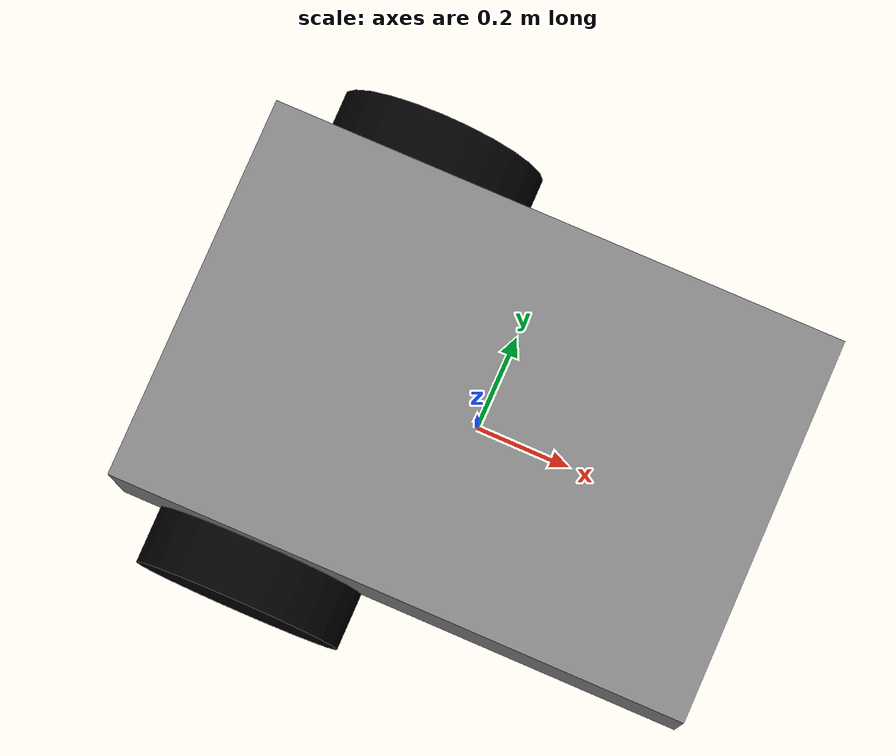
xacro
<?xml version="1.0"?>
<robot name="tortoisebot" xmlns:xacro="http://www.ros.org/wiki/xacro" >

  <xacro:include filename="$(find tortoisebot_description)/urdf/gazebo_plug_bot.urdf.xacro"/>
  <xacro:load_gazebo_plugin/>

<!-- Base Link -->
  <link name="base_link"/>
  <material name="Gray">
    <color rgba="0.5 0.5 0.5 1.0"/>
  </material>
  <material name="Black">
    <color rgba="0.0 0.0 0.0 1.0"/>
  </material>
  <material name="Red">
    <color rgba="1.0 0.0 0.0 1.0"/>
  </material>
  <material name="Blue">
    <color rgba="0.0 0.0 1.0 1.0"/>
  </material>
  <material name="Green">
    <color rgba="0.0 1.0 0.0 1.0"/>
  </material>
  <material name="White">
    <color rgba="1.0 1.0 1.0 1.0"/>
  </material>
  <!-- Chassis Link -->
  <link name="chassis">
    <inertial>
      <mass value="1.0"/>
      <origin rpy="0 0 0" xyz="0 0 0"/>
      <inertia ixx="0.06083333333333334" ixy="0" ixz="0" iyy="0.1275" iyz="0" izz="0.17333333333333334"/>
    </inertial>
    <visual>
      <origin rpy="0 0 0" xyz="0 0 0"/>
      <geometry>
        <box size="1.2 0.8 0.3"/>
      </geometry>
      <material name="Gray"/>
    </visual>
    <collision>
      <origin rpy="0 0 0" xyz="0 0 0"/>
      <geometry>
        <box size="1.2 0.8 0.3"/>
      </geometry>
    </collision>
  </link>
  <!-- Fixed Joint between base_link and chassis -->
  <joint name="base_to_chassis" type="fixed">
    <parent link="base_link"/>
    <child link="chassis"/>
    <origin rpy="0 0 0" xyz="0 0 0.15"/>
  </joint>
  <link name="left_wheel">
    <inertial>
      <mass value="0.5"/>
      <origin rpy="1.5707963267948966 0 0" xyz="0 0 0"/>
      <inertia ixx="0.00665" ixy="0" ixz="0" iyy="0.00665" iyz="0" izz="0.0121"/>
    </inertial>
    <visual>
      <origin rpy="1.5707963267948966 0 0" xyz="0 0 0"/>
      <geometry>
        <cylinder length="0.12" radius="0.22"/>
      </geometry>
      <material name="Black"/>
    </visual>
    <collision>
      <origin rpy="1.5707963267948966 0 0" xyz="0 0 0"/>
      <geometry>
        <cylinder length="0.12" radius="0.22"/>
      </geometry>
    </collision>
  </link>
  <joint name="left_joint" type="continuous">
    <parent link="chassis"/>
    <child link="left_wheel"/>
    <origin rpy="0 0 0" xyz="-0.3 0.46 -0.15"/>
    <axis xyz="0 1 0"/>
  </joint>
  <link name="right_wheel">
    <inertial>
      <mass value="0.5"/>
      <origin rpy="1.5707963267948966 0 0" xyz="0 0 0"/>
      <inertia ixx="0.00665" ixy="0" ixz="0" iyy="0.00665" iyz="0" izz="0.0121"/>
    </inertial>
    <visual>
      <origin rpy="1.5707963267948966 0 0" xyz="0 0 0"/>
      <geometry>
        <cylinder length="0.12" radius="0.22"/>
      </geometry>
      <material name="Black"/>
    </visual>
    <collision>
      <origin rpy="1.5707963267948966 0 0" xyz="0 0 0"/>
      <geometry>
        <cylinder length="0.12" radius="0.22"/>
      </geometry>
    </collision>
  </link>
  <joint name="right_joint" type="continuous">
    <parent link="chassis"/>
    <child link="right_wheel"/>
    <origin rpy="0 0 0" xyz="-0.3 -0.46 -0.15"/>
    <axis xyz="0 1 0"/>
  </joint>
  <link name="front_caster_wheel">
    <inertial>
      <mass value="0.5"/>
      <origin rpy="0 0 0" xyz="0 0 0"/>
      <inertia ixx="0.00968" ixy="0" ixz="0" iyy="0.00968" iyz="0" izz="0.00968"/>
    </inertial>
    <visual>
      <origin rpy="0 0 0" xyz="0 0 0"/>
      <geometry>
        <sphere radius="0.22"/>
      </geometry>
      <material name="Black"/>
    </visual>
    <collision>
      <origin rpy="0 0 0" xyz="0 0 0"/>
      <geometry>
        <sphere radius="0.22"/>
      </geometry>
    </collision>
  </link>
  <joint name="front_caster_joint" type="continuous">
    <parent link="free-rotating_y_link"/>
    <child link="front_caster_wheel"/>
    <origin rpy="0 0 0" xyz="0 0 0"/>
    <axis xyz="0 0 1"/>
  </joint>
  <!-- Front free-rotating Link (around y) for 2-Wheeled Robot -->
  <link name="free-rotating_y_link">
    <!-- No mass or geometry needed -->
    <inertial>
      <mass value="0.001"/>
      <!-- Minimal mass to avoid simulation issues -->
      <origin rpy="0 0 0" xyz="0 0 0"/>
      <inertia ixx="1e-6" ixy="0" ixz="0" iyy="1e-6" iyz="0" izz="1e-6"/>
    </inertial>
  </link>
  <joint name="free-rotating_y_joint" type="continuous">
    <parent link="free-rotating_x_link"/>
    <child link="free-rotating_y_link"/>
    <origin rpy="0 0 0" xyz="0 0 0"/>
    <axis xyz="0 1 0"/>
  </joint>
  <!-- Front free-rotating Link (around x) for 2-Wheeled Robot -->
  <link name="free-rotating_x_link">
    <!-- No mass or geometry needed -->
    <inertial>
      <mass value="0.001"/>
      <!-- Minimal mass to avoid simulation issues -->
      <origin rpy="0 0 0" xyz="0 0 0"/>
      <inertia ixx="1e-6" ixy="0" ixz="0" iyy="1e-6" iyz="0" izz="1e-6"/>
    </inertial>
  </link>
  <joint name="free-rotating_x_joint" type="continuous">
    <parent link="chassis"/>
    <child link="free-rotating_x_link"/>
    <origin rpy="0 0 0" xyz="0.38 0 -0.15"/>
    <axis xyz="1 0 0"/>
  </joint>

</robot>
